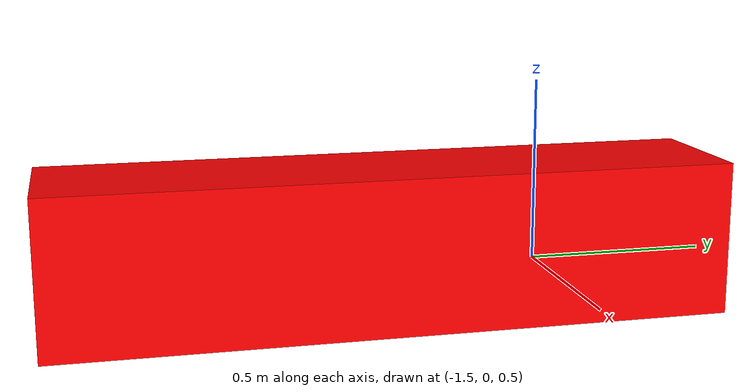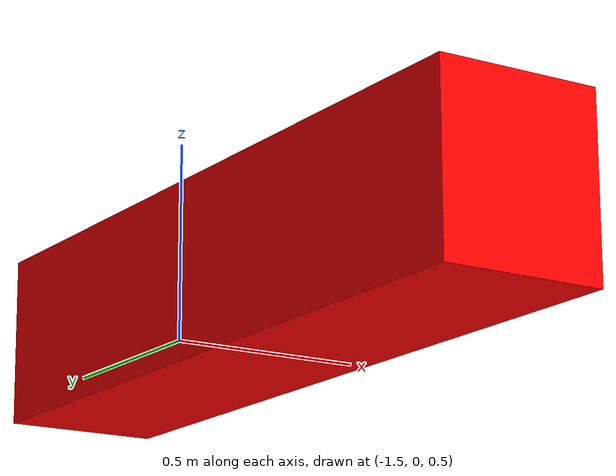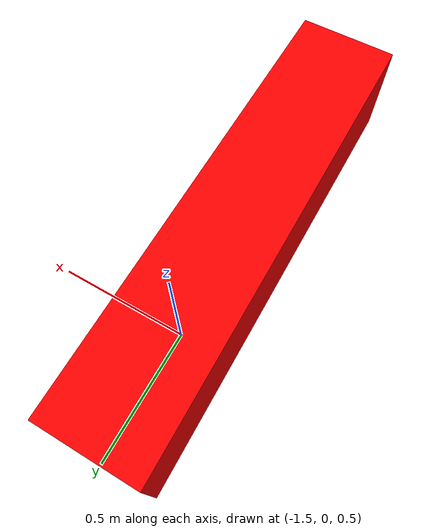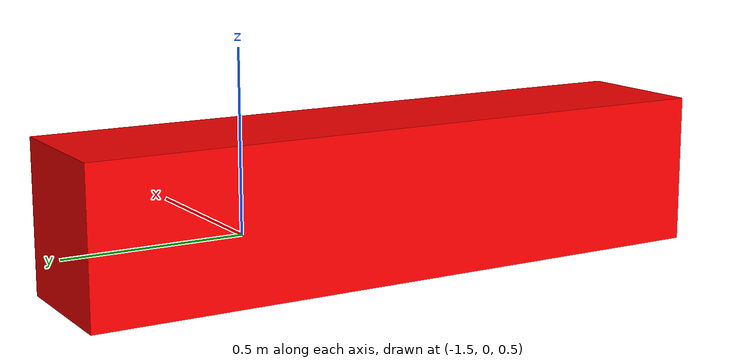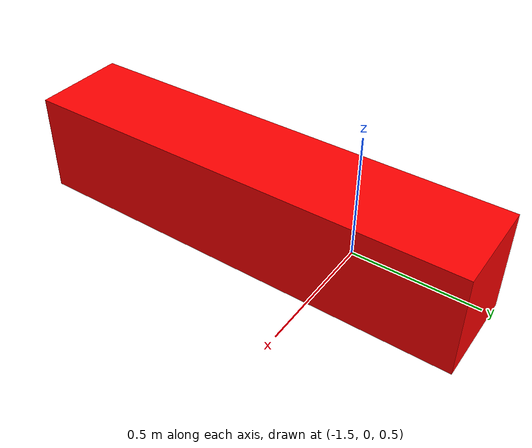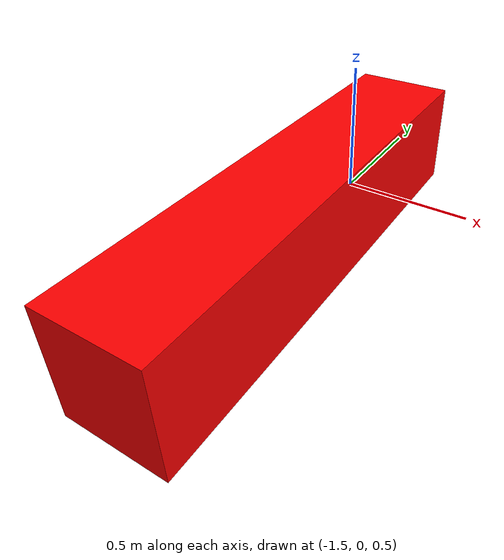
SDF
<?xml version='1.0'?>
<sdf version='1.6'>
  <model name='OBS_red'>
    <link name='link'>
      <inertial>
        <mass>2088.15</mass>
        <inertia>
          <ixx>624.506</ixx>
          <ixy>0</ixy>
          <ixz>0</ixz>
          <iyy>57.7699</iyy>
          <iyz>0</iyz>
          <izz>619.918</izz>
        </inertia>
        <pose frame=''>0 0 0 0 -0 0</pose>
      </inertial>
      <self_collide>0</self_collide>
      <enable_wind>0</enable_wind>
      <kinematic>0</kinematic>
      <pose frame=''>-1.5019 -0.422412 0.570771 0 -0 0</pose>
      <gravity>1</gravity>
      <visual name='visual'>
        <geometry>
          <box>
            <size>0.39091 1.84653 0.423292</size>
          </box>
        </geometry>
        <material>
          <script>
            <name>Gazebo/Grey</name>
            <uri>file://media/materials/scripts/gazebo.material</uri>
          </script>
          <shader type='pixel'>
            <normal_map>__default__</normal_map>
          </shader>
          <ambient>1 0 0 1</ambient>
          <diffuse>1 0 0 1</diffuse>
          <specular>0.01 0.01 0.01 1</specular>
          <emissive>0 0 0 1</emissive>
        </material>
        <pose frame=''>0 0 0 0 -0 0</pose>
        <transparency>0</transparency>
        <cast_shadows>1</cast_shadows>
      </visual>
      <collision name='collision'>
        <laser_retro>0</laser_retro>
        <max_contacts>10</max_contacts>
        <pose frame=''>0 0 0 0 -0 0</pose>
        <geometry>
          <box>
            <size>0.39091 1.84653 0.423292</size>
          </box>
        </geometry>
        <surface>
          <friction>
            <ode>
              <mu>100</mu>
              <mu2>100</mu2>
              <fdir1>0 0 0</fdir1>
              <slip1>0</slip1>
              <slip2>0</slip2>
            </ode>
            <torsional>
              <coefficient>1</coefficient>
              <patch_radius>0</patch_radius>
              <surface_radius>0</surface_radius>
              <use_patch_radius>1</use_patch_radius>
              <ode>
                <slip>0</slip>
              </ode>
            </torsional>
          </friction>
          <bounce>
            <restitution_coefficient>0</restitution_coefficient>
            <threshold>1e+06</threshold>
          </bounce>
          <contact>
            <collide_without_contact>0</collide_without_contact>
            <collide_without_contact_bitmask>1</collide_without_contact_bitmask>
            <collide_bitmask>1</collide_bitmask>
            <ode>
              <soft_cfm>0</soft_cfm>
              <soft_erp>0.2</soft_erp>
              <kp>1e+12</kp>
              <kd>1</kd>
              <max_vel>0.01</max_vel>
              <min_depth>0</min_depth>
            </ode>
            <bullet>
              <split_impulse>1</split_impulse>
              <split_impulse_penetration_threshold>-0.01</split_impulse_penetration_threshold>
              <soft_cfm>0</soft_cfm>
              <soft_erp>0.2</soft_erp>
              <kp>1e+12</kp>
              <kd>1</kd>
            </bullet>
          </contact>
        </surface>
      </collision>
    </link>
    <static>0</static>
    <allow_auto_disable>1</allow_auto_disable>
  </model>
</sdf>
